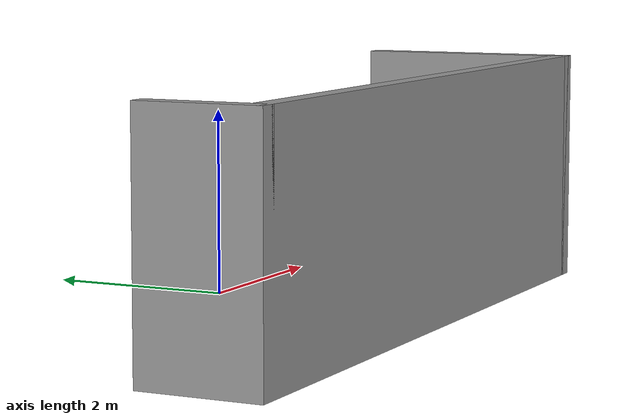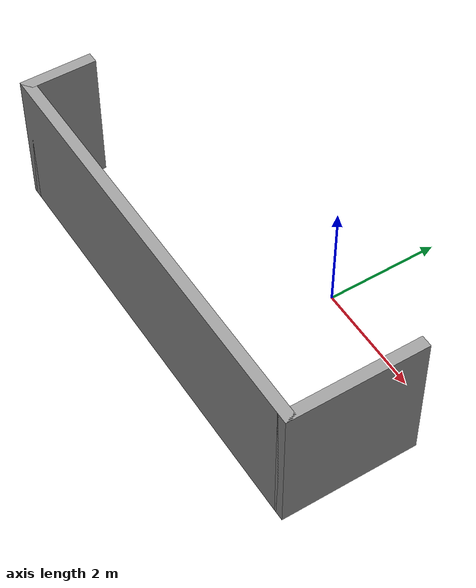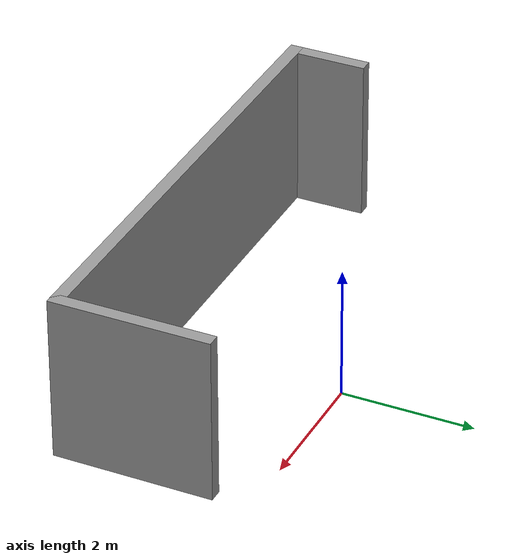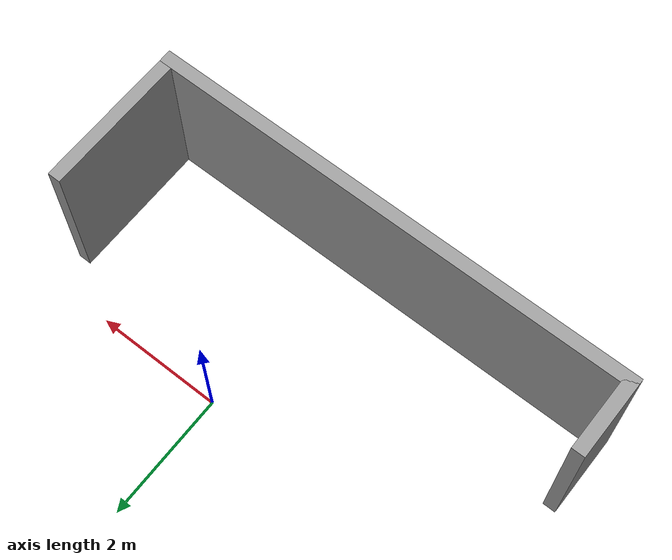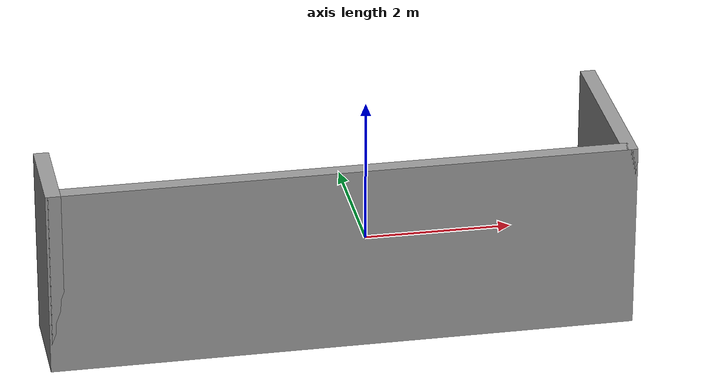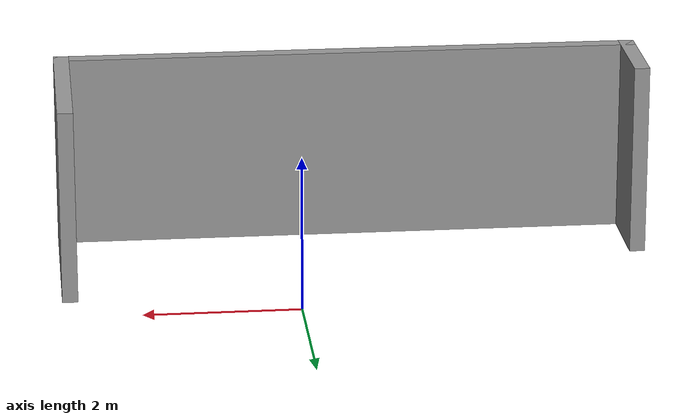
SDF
<?xml version='1.0'?>
<sdf version='1.4'>
  <model name='tent1'>
    <link name='Wall_0'>
      <collision name='Wall_0_Collision'>
        <geometry>
          <box>
            <size>1.26 0.2 2.5</size>
          </box>
        </geometry>
        <pose>0 0 1.25 0 -0 0</pose>
      </collision>
      <visual name='Wall_0_Visual'>
        <pose>0 0 1.25 0 -0 0</pose>
        <geometry>
          <box>
            <size>1.26 0.2 2.5</size>
          </box>
        </geometry>
        <material>
          <script>
            <uri>file://media/materials/scripts/gazebo.material</uri>
            <name>Gazebo/Grey</name>
          </script>
        </material>
      </visual>
      <velocity_decay>
        <linear>0</linear>
        <angular>0</angular>
      </velocity_decay>
      <pose>-4.54 -2.3 0 0 0 -1.5708</pose>
    </link>
    <link name='Wall_1'>
      <collision name='Wall_1_Collision'>
        <geometry>
          <box>
            <size>7.63 0.2 2.5</size>
          </box>
        </geometry>
        <pose>0 0 1.25 0 -0 0</pose>
      </collision>
      <visual name='Wall_1_Visual'>
        <pose>0 0 1.25 0 -0 0</pose>
        <geometry>
          <box>
            <size>7.63 0.2 2.5</size>
          </box>
        </geometry>
        <material>
          <script>
            <uri>file://media/materials/scripts/gazebo.material</uri>
            <name>Gazebo/Grey</name>
          </script>
        </material>
      </visual>
      <velocity_decay>
        <linear>0</linear>
        <angular>0</angular>
      </velocity_decay>
      <pose>-0.825 -2.83 0 0 -0 0</pose>
    </link>
    <link name='Wall_2'>
      <collision name='Wall_2_Collision'>
        <geometry>
          <box>
            <size>2.4 0.2 2.5</size>
          </box>
        </geometry>
        <pose>0 0 1.25 0 -0 0</pose>
      </collision>
      <visual name='Wall_2_Visual'>
        <pose>0 0 1.25 0 -0 0</pose>
        <geometry>
          <box>
            <size>2.4 0.2 2.5</size>
          </box>
        </geometry>
        <material>
          <script>
            <uri>file://media/materials/scripts/gazebo.material</uri>
            <name>Gazebo/Grey</name>
          </script>
        </material>
      </visual>
      <velocity_decay>
        <linear>0</linear>
        <angular>0</angular>
      </velocity_decay>
      <pose>2.89 -1.73 0 0 -0 1.5708</pose>
    </link>
    <static>1</static>
  </model>
</sdf>
